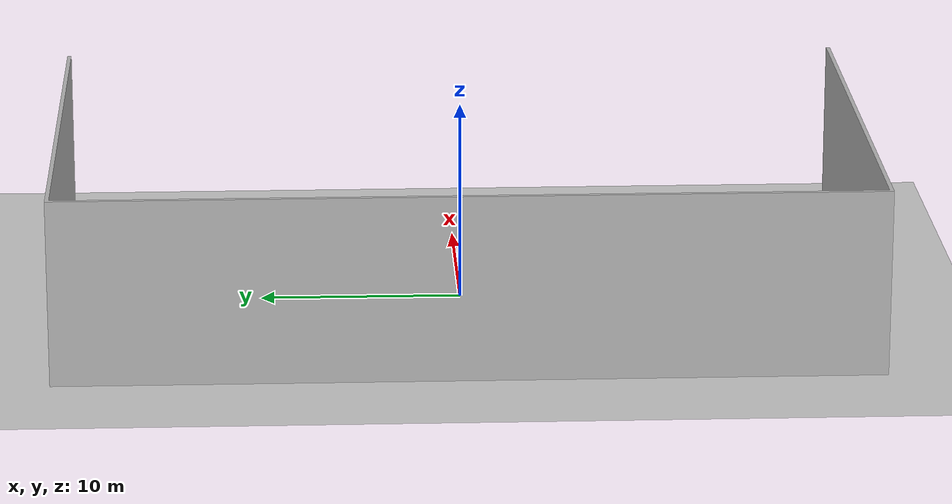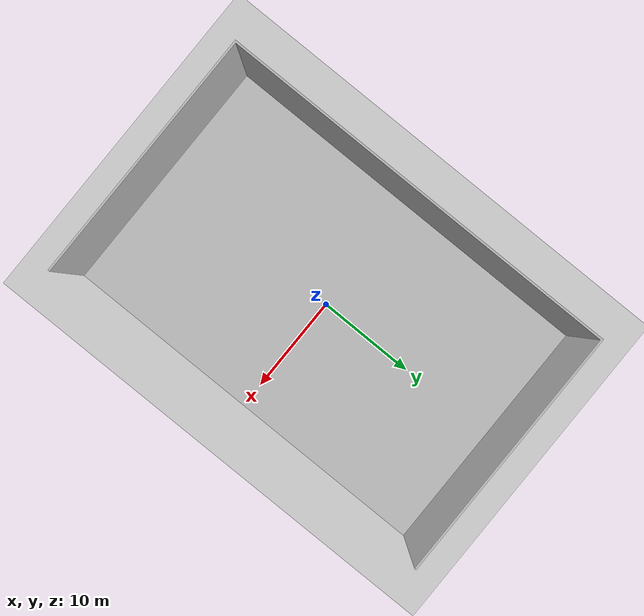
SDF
<?xml version="1.0"?>
<sdf version="1.5">
  <world name="default">

        <scene>
      <ambient>0.95 0.95 0.95 1</ambient>
      <shadows>false</shadows>
        </scene>
        <include>  <!--Add a light source-->
            <uri>model://sun</uri>
        </include>

        <include>  <!--Add a ground plane-->
            <uri>model://ground_plane</uri>
        </include>

      warehouse model
        <model name = "warehouse">
            <include>  <!--Add custom room model-->
                <static>true</static>
                <uri>model://warehouse</uri>
<!--                centering the warehouse model-->
                <pose> 12.5 -20 0 0 0 1.57 </pose>
            </include>
        </model>

<!--        forklift-->

<!--        workers-->

<!--           conveyor1-->

<!--          conveyor2-->

<!--        machine 1-->

<!--        machine 2-->
<!--            green_rack population-->

<!--     green_rack population-->

<!--     pallet population 1-->

<!--      pallet population 2-->

<!--    pallet population 3-->

  </world>
</sdf>

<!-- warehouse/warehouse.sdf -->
<sdf version="1.5">
  <model name="warehouse">
    <static>true</static>
    <link name="warehouse_link">
      <collision name="collision">
        <geometry>
          <box>
            <size>1 1 1 </size>
          </box>
        </geometry>
      </collision>
      <visual name="warehouse_mesh">
      <cast_shadows>true</cast_shadows>
        <geometry>
          <mesh>
            <uri>model://warehouse/meshes/warehouse.dae</uri>
          </mesh>
        </geometry>
      </visual>
    </link>
  </model>
</sdf>
